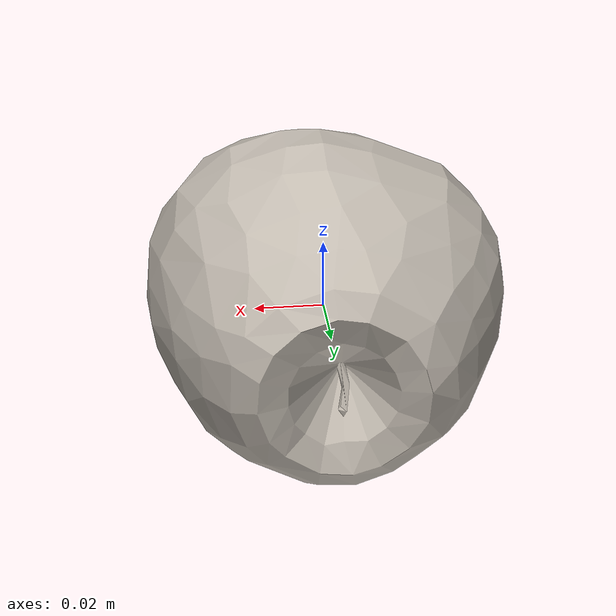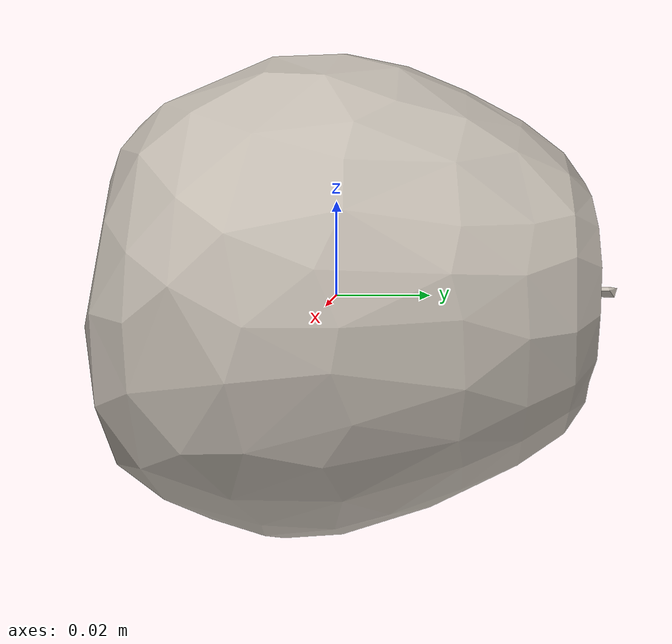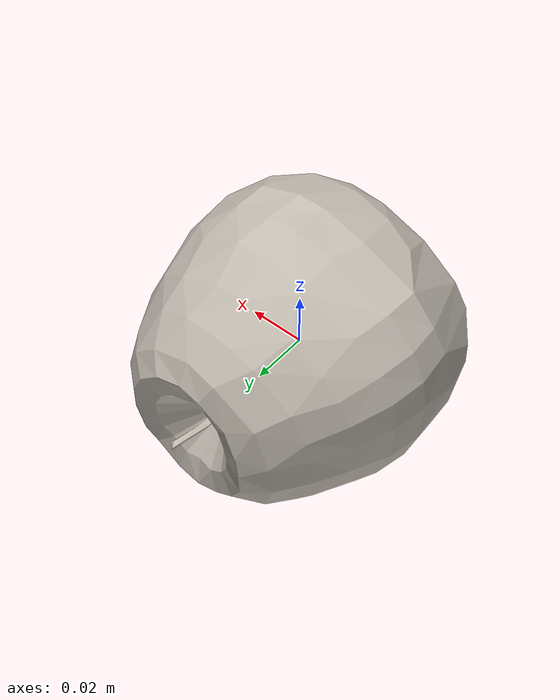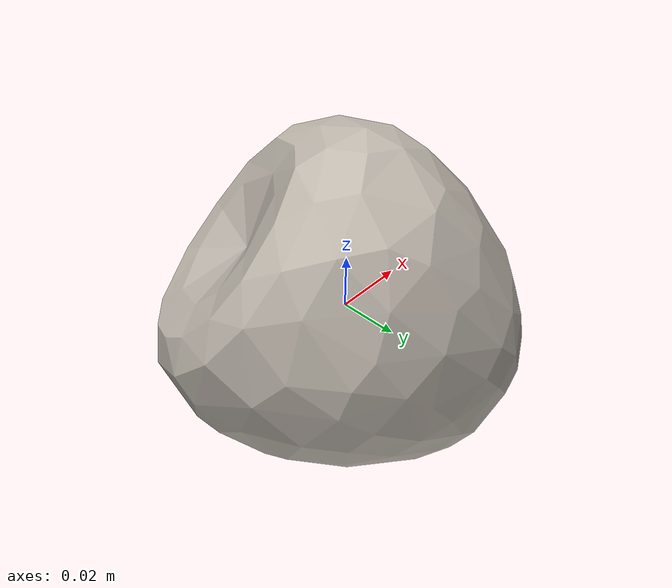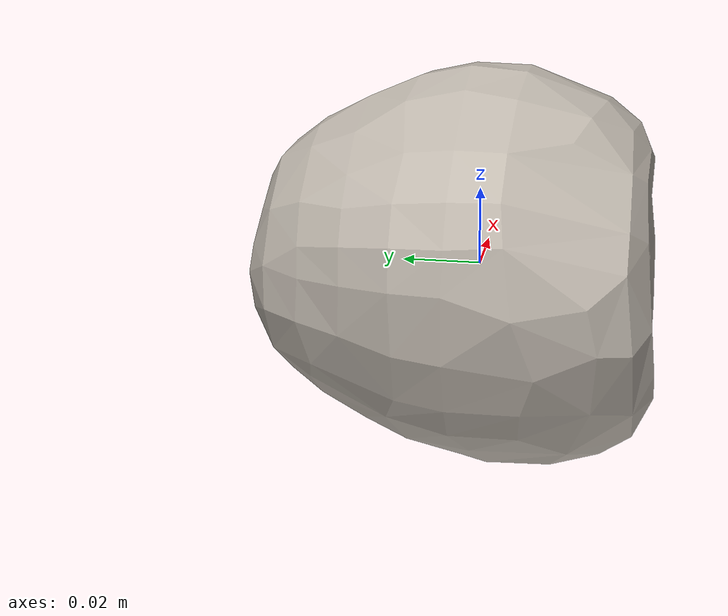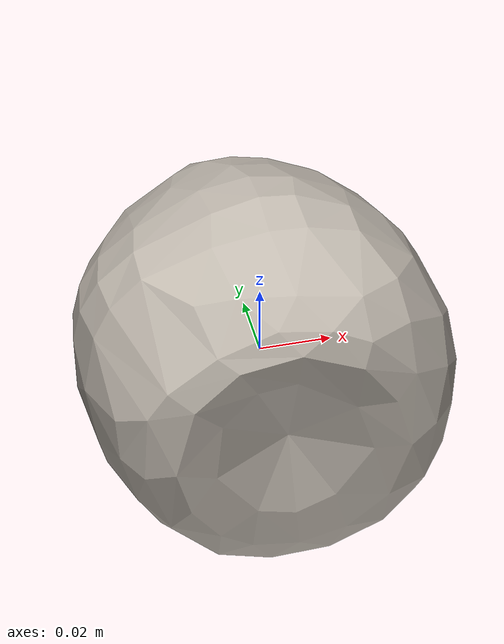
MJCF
<mujoco model="Apple_23">
  <compiler autolimits="true" boundmass="0.01" angle="radian"/>
  <default>
    <default class="/">
      <default class="__VISUAL_MJT__">
        <geom contype="0" conaffinity="0" group="0"/>
      </default>
      <default class="__STRUCTURAL_MJT__">
        <geom contype="8" conaffinity="15" group="4" friction="0.90000000000000002 0.90000000000000002 0.001" solref="0.025000000000000001 1" solimp="0.998 0.998 0.001"/>
      </default>
      <default class="__DYNAMIC_MJT__">
        <geom contype="1" conaffinity="15" group="4" friction="0.90000000000000002 0.90000000000000002 0.001" solref="0.025000000000000001 1" solimp="0.998 0.998 0.001"/>
      </default>
    </default>
  </default>
  <asset>
    <texture name="Apple2_Mat2" type="2d" file="Apple2_AlbedoTransparency2.png"/>
    <material name="material_Apple2_Mat2" class="/" texture="Apple2_Mat2" specular="0.5" shininess="0.5" rgba="1 1 1 1"/>
    <mesh name="Apple_23_apple_b8" class="/" file="Apple_23_apple_b8/Apple_23_apple_b8.obj" scale="1 1 1"/>
  </asset>
  <worldbody>
    <body name="Apple_23">
      <joint name="Apple_23_free" class="/" type="free" pos="0 0 0" axis="0 0 1" stiffness="0" range="0 0" armature="0" damping="0.10000000000000001" frictionloss="0"/>
      <body name="Apple_23_apple_b8" pos="-0 0.01461 0" quat="1 0 0 0">
        <geom name="Apple_23_apple_b8" class="__VISUAL_MJT__" type="mesh" material="material_Apple2_Mat2" shellinertia="false" mesh="Apple_23_apple_b8"/>
        <geom name="Apple_23_PrimitiveCollider_0" class="__DYNAMIC_MJT__" type="capsule" size="0.052620556205511093 0.006069578230381012" rgba="0 1 0 1" pos="-0 -0.014612819999456406 0" quat="0.70710678118654757 0.70710678118654746 0 0"/>
      </body>
    </body>
  </worldbody>
</mujoco>
